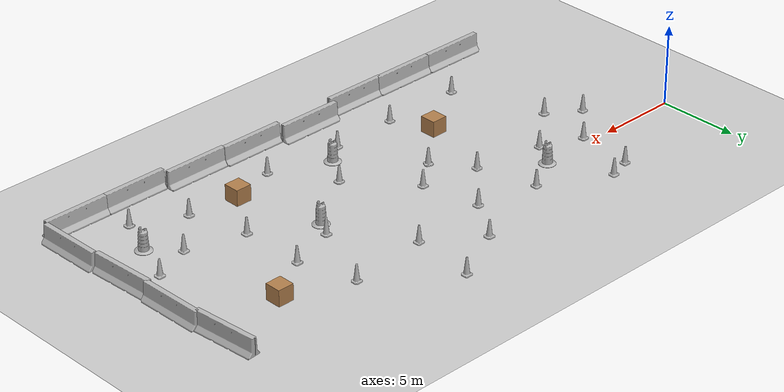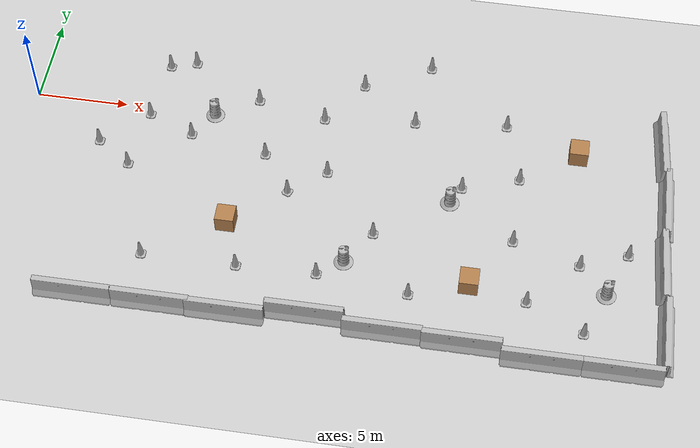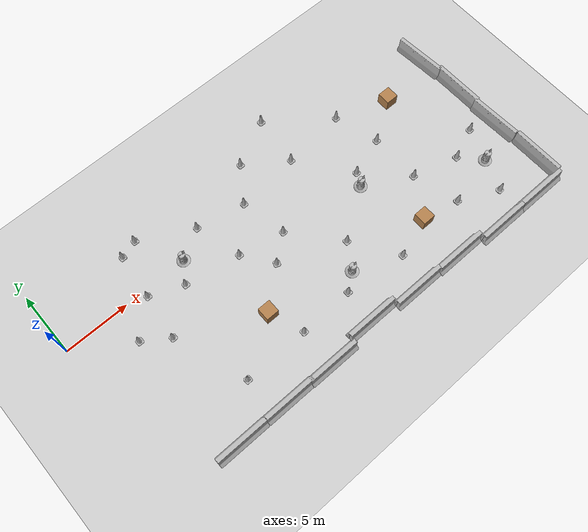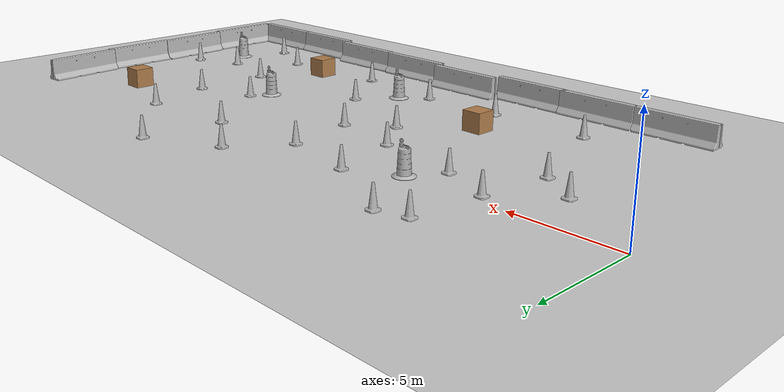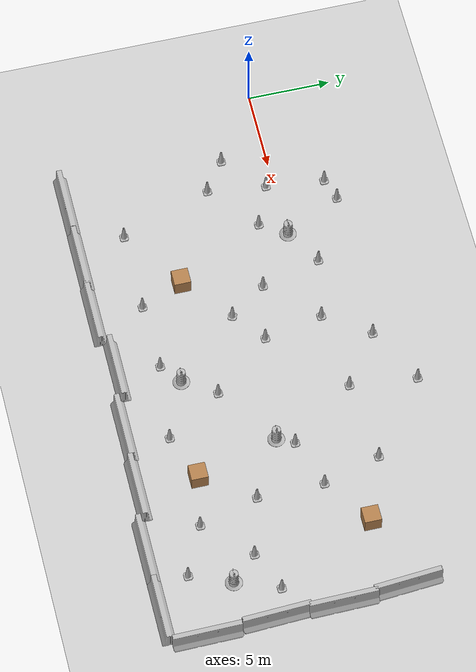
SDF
<sdf version="1.4">
 <world name="default">
  <model name="ground_plane">
   <static>1</static>
   <link name="link">
    <collision name="collision">
     <geometry><plane><normal>0 0 1</normal><size>100 100</size></plane></geometry>
     <surface><friction><ode><mu>100</mu><mu2>50</mu2></ode></friction></surface>
    </collision>
    <visual name="visual">
     <cast_shadows>0</cast_shadows>
     <geometry><plane><normal>0 0 1</normal><size>100 100</size></plane></geometry>
     <material>
      <script><uri>file://media/materials/scripts/gazebo.material</uri><name>Gazebo/Grey</name></script>
     </material>
    </visual>
    <velocity_decay><linear>0</linear><angular>0</angular></velocity_decay>
   </link>
  </model>
  <model name="jersey_barrier_2">
   <static>1</static>
   <link name="link">
    <visual name="visual">
     <geometry><mesh><uri>model://jersey_barrier/meshes/jersey_barrier.dae</uri></mesh></geometry>
    </visual>
    <collision name="upright">
     <pose>0 0 0.5715 0 -0 0</pose>
     <geometry><box><size>4.06542 0.3063 1.143</size></box></geometry>
    </collision>
    <collision name="base">
     <pose>0 0 0.032258 0 -0 0</pose>
     <geometry><box><size>4.06542 0.8107 0.064516</size></box></geometry>
    </collision>
    <collision name="base2">
     <pose>0 0 0.1 0 -0 0</pose>
     <geometry><box><size>4.06542 0.65 0.1</size></box></geometry>
    </collision>
    <collision name="base3">
     <pose>0 0 0.2 0 -0 0</pose>
     <geometry><box><size>4.06542 0.5 0.1</size></box></geometry>
    </collision>
    <collision name="left-angle">
     <pose>0 -0.224 0.2401 0.9 -0 0</pose>
     <geometry><box><size>4.06542 0.5 0.064516</size></box></geometry>
    </collision>
    <collision name="right-angle">
     <pose>0 0.224 0.2401 -0.9 0 0</pose>
     <geometry><box><size>4.06542 0.5 0.064516</size></box></geometry>
    </collision>
    <velocity_decay><linear>0</linear><angular>0</angular></velocity_decay>
   </link>
   <pose>5.13642 -12.451 0 0 -0 0</pose>
  </model>
  <model name="jersey_barrier_3">
   <static>1</static>
   <link name="link">
    <visual name="visual">
     <geometry><mesh><uri>model://jersey_barrier/meshes/jersey_barrier.dae</uri></mesh></geometry>
    </visual>
    <collision name="upright">
     <pose>0 0 0.5715 0 -0 0</pose>
     <geometry><box><size>4.06542 0.3063 1.143</size></box></geometry>
    </collision>
    <collision name="base">
     <pose>0 0 0.032258 0 -0 0</pose>
     <geometry><box><size>4.06542 0.8107 0.064516</size></box></geometry>
    </collision>
    <collision name="base2">
     <pose>0 0 0.1 0 -0 0</pose>
     <geometry><box><size>4.06542 0.65 0.1</size></box></geometry>
    </collision>
    <collision name="base3">
     <pose>0 0 0.2 0 -0 0</pose>
     <geometry><box><size>4.06542 0.5 0.1</size></box></geometry>
    </collision>
    <collision name="left-angle">
     <pose>0 -0.224 0.2401 0.9 -0 0</pose>
     <geometry><box><size>4.06542 0.5 0.064516</size></box></geometry>
    </collision>
    <collision name="right-angle">
     <pose>0 0.224 0.2401 -0.9 0 0</pose>
     <geometry><box><size>4.06542 0.5 0.064516</size></box></geometry>
    </collision>
    <velocity_decay><linear>0</linear><angular>0</angular></velocity_decay>
   </link>
   <pose>9.19104 -12.4604 0 0 -0 0</pose>
  </model>
  <model name="jersey_barrier_4">
   <static>1</static>
   <link name="link">
    <visual name="visual">
     <geometry><mesh><uri>model://jersey_barrier/meshes/jersey_barrier.dae</uri></mesh></geometry>
    </visual>
    <collision name="upright">
     <pose>0 0 0.5715 0 -0 0</pose>
     <geometry><box><size>4.06542 0.3063 1.143</size></box></geometry>
    </collision>
    <collision name="base">
     <pose>0 0 0.032258 0 -0 0</pose>
     <geometry><box><size>4.06542 0.8107 0.064516</size></box></geometry>
    </collision>
    <collision name="base2">
     <pose>0 0 0.1 0 -0 0</pose>
     <geometry><box><size>4.06542 0.65 0.1</size></box></geometry>
    </collision>
    <collision name="base3">
     <pose>0 0 0.2 0 -0 0</pose>
     <geometry><box><size>4.06542 0.5 0.1</size></box></geometry>
    </collision>
    <collision name="left-angle">
     <pose>0 -0.224 0.2401 0.9 -0 0</pose>
     <geometry><box><size>4.06542 0.5 0.064516</size></box></geometry>
    </collision>
    <collision name="right-angle">
     <pose>0 0.224 0.2401 -0.9 0 0</pose>
     <geometry><box><size>4.06542 0.5 0.064516</size></box></geometry>
    </collision>
    <velocity_decay><linear>0</linear><angular>0</angular></velocity_decay>
   </link>
   <pose>35.079 -10.8209 0 0 -0 1.58161</pose>
  </model>
  <model name="jersey_barrier_12">
   <static>1</static>
   <link name="link">
    <visual name="visual">
     <geometry><mesh><uri>model://jersey_barrier/meshes/jersey_barrier.dae</uri></mesh></geometry>
    </visual>
    <collision name="upright">
     <pose>0 0 0.5715 0 -0 0</pose>
     <geometry><box><size>4.06542 0.3063 1.143</size></box></geometry>
    </collision>
    <collision name="base">
     <pose>0 0 0.032258 0 -0 0</pose>
     <geometry><box><size>4.06542 0.8107 0.064516</size></box></geometry>
    </collision>
    <collision name="base2">
     <pose>0 0 0.1 0 -0 0</pose>
     <geometry><box><size>4.06542 0.65 0.1</size></box></geometry>
    </collision>
    <collision name="base3">
     <pose>0 0 0.2 0 -0 0</pose>
     <geometry><box><size>4.06542 0.5 0.1</size></box></geometry>
    </collision>
    <collision name="left-angle">
     <pose>0 -0.224 0.2401 0.9 -0 0</pose>
     <geometry><box><size>4.06542 0.5 0.064516</size></box></geometry>
    </collision>
    <collision name="right-angle">
     <pose>0 0.224 0.2401 -0.9 0 0</pose>
     <geometry><box><size>4.06542 0.5 0.064516</size></box></geometry>
    </collision>
    <velocity_decay><linear>0</linear><angular>0</angular></velocity_decay>
   </link>
   <pose>34.5148 0.998685 0 0 -0 1.64825</pose>
  </model>
  <model name="jersey_barrier_13">
   <static>1</static>
   <link name="link">
    <visual name="visual">
     <geometry><mesh><uri>model://jersey_barrier/meshes/jersey_barrier.dae</uri></mesh></geometry>
    </visual>
    <collision name="upright">
     <pose>0 0 0.5715 0 -0 0</pose>
     <geometry><box><size>4.06542 0.3063 1.143</size></box></geometry>
    </collision>
    <collision name="base">
     <pose>0 0 0.032258 0 -0 0</pose>
     <geometry><box><size>4.06542 0.8107 0.064516</size></box></geometry>
    </collision>
    <collision name="base2">
     <pose>0 0 0.1 0 -0 0</pose>
     <geometry><box><size>4.06542 0.65 0.1</size></box></geometry>
    </collision>
    <collision name="base3">
     <pose>0 0 0.2 0 -0 0</pose>
     <geometry><box><size>4.06542 0.5 0.1</size></box></geometry>
    </collision>
    <collision name="left-angle">
     <pose>0 -0.224 0.2401 0.9 -0 0</pose>
     <geometry><box><size>4.06542 0.5 0.064516</size></box></geometry>
    </collision>
    <collision name="right-angle">
     <pose>0 0.224 0.2401 -0.9 0 0</pose>
     <geometry><box><size>4.06542 0.5 0.064516</size></box></geometry>
    </collision>
    <velocity_decay><linear>0</linear><angular>0</angular></velocity_decay>
   </link>
   <pose>34.8236 -2.82804 0 0 -0 1.58545</pose>
  </model>
  <model name="jersey_barrier_14">
   <static>1</static>
   <link name="link">
    <visual name="visual">
     <geometry><mesh><uri>model://jersey_barrier/meshes/jersey_barrier.dae</uri></mesh></geometry>
    </visual>
    <collision name="upright">
     <pose>0 0 0.5715 0 -0 0</pose>
     <geometry><box><size>4.06542 0.3063 1.143</size></box></geometry>
    </collision>
    <collision name="base">
     <pose>0 0 0.032258 0 -0 0</pose>
     <geometry><box><size>4.06542 0.8107 0.064516</size></box></geometry>
    </collision>
    <collision name="base2">
     <pose>0 0 0.1 0 -0 0</pose>
     <geometry><box><size>4.06542 0.65 0.1</size></box></geometry>
    </collision>
    <collision name="base3">
     <pose>0 0 0.2 0 -0 0</pose>
     <geometry><box><size>4.06542 0.5 0.1</size></box></geometry>
    </collision>
    <collision name="left-angle">
     <pose>0 -0.224 0.2401 0.9 -0 0</pose>
     <geometry><box><size>4.06542 0.5 0.064516</size></box></geometry>
    </collision>
    <collision name="right-angle">
     <pose>0 0.224 0.2401 -0.9 0 0</pose>
     <geometry><box><size>4.06542 0.5 0.064516</size></box></geometry>
    </collision>
    <velocity_decay><linear>0</linear><angular>0</angular></velocity_decay>
   </link>
   <pose>34.8267 -6.73094 0 0 -0 1.61742</pose>
  </model>
  <model name="Construction Cone_0">
   <link name="link">
    <collision name="collision">
     <geometry>
      <mesh><scale>10 10 10</scale><uri>model://construction_cone/meshes/construction_cone.dae</uri></mesh>
     </geometry>
    </collision>
    <visual name="visual">
     <geometry>
      <mesh><scale>10 10 10</scale><uri>model://construction_cone/meshes/construction_cone.dae</uri></mesh>
     </geometry>
    </visual>
    <velocity_decay><linear>0</linear><angular>0</angular></velocity_decay>
    <inertial>
     <inertia><ixx>1</ixx><ixy>0</ixy><ixz>0</ixz><iyy>1</iyy><iyz>0</iyz><izz>1</izz></inertia>
     <mass>1</mass>
    </inertial>
   </link>
   <pose>19.7333 -6.57949 -1e-06 -1e-06 -2e-06 8.07794e-28</pose>
   <static>0</static>
  </model>
  <model name="Construction Cone_3">
   <link name="link">
    <collision name="collision">
     <geometry>
      <mesh><scale>10 10 10</scale><uri>model://construction_cone/meshes/construction_cone.dae</uri></mesh>
     </geometry>
    </collision>
    <visual name="visual">
     <geometry>
      <mesh><scale>10 10 10</scale><uri>model://construction_cone/meshes/construction_cone.dae</uri></mesh>
     </geometry>
    </visual>
    <velocity_decay><linear>0</linear><angular>0</angular></velocity_decay>
    <inertial>
     <inertia><ixx>1</ixx><ixy>0</ixy><ixz>0</ixz><iyy>1</iyy><iyz>0</iyz><izz>1</izz></inertia>
     <mass>1</mass>
    </inertial>
   </link>
   <pose>4.12286 -2.7008 -0 0 -1e-06 0</pose>
   <static>0</static>
  </model>
  <model name="Construction Cone_7">
   <link name="link">
    <collision name="collision">
     <geometry>
      <mesh><scale>10 10 10</scale><uri>model://construction_cone/meshes/construction_cone.dae</uri></mesh>
     </geometry>
    </collision>
    <visual name="visual">
     <geometry>
      <mesh><scale>10 10 10</scale><uri>model://construction_cone/meshes/construction_cone.dae</uri></mesh>
     </geometry>
    </visual>
    <velocity_decay><linear>0</linear><angular>0</angular></velocity_decay>
    <inertial>
     <inertia><ixx>1</ixx><ixy>0</ixy><ixz>0</ixz><iyy>1</iyy><iyz>0</iyz><izz>1</izz></inertia>
     <mass>1</mass>
    </inertial>
   </link>
   <pose>17.1922 -9.4642 -1e-06 -2e-06 -3e-06 0</pose>
   <static>0</static>
  </model>
  <model name="Construction Cone_11">
   <link name="link">
    <collision name="collision">
     <geometry>
      <mesh><scale>10 10 10</scale><uri>model://construction_cone/meshes/construction_cone.dae</uri></mesh>
     </geometry>
    </collision>
    <visual name="visual">
     <geometry>
      <mesh><scale>10 10 10</scale><uri>model://construction_cone/meshes/construction_cone.dae</uri></mesh>
     </geometry>
    </visual>
    <velocity_decay><linear>0</linear><angular>0</angular></velocity_decay>
    <inertial>
     <inertia><ixx>1</ixx><ixy>0</ixy><ixz>0</ixz><iyy>1</iyy><iyz>0</iyz><izz>1</izz></inertia>
     <mass>1</mass>
    </inertial>
   </link>
   <pose>12.2625 1.30731 -0 0 -1e-06 0</pose>
   <static>0</static>
  </model>
  <model name="Construction Cone_14">
   <link name="link">
    <collision name="collision">
     <geometry>
      <mesh><scale>10 10 10</scale><uri>model://construction_cone/meshes/construction_cone.dae</uri></mesh>
     </geometry>
    </collision>
    <visual name="visual">
     <geometry>
      <mesh><scale>10 10 10</scale><uri>model://construction_cone/meshes/construction_cone.dae</uri></mesh>
     </geometry>
    </visual>
    <velocity_decay><linear>0</linear><angular>0</angular></velocity_decay>
    <inertial>
     <inertia><ixx>1</ixx><ixy>0</ixy><ixz>0</ixz><iyy>1</iyy><iyz>0</iyz><izz>1</izz></inertia>
     <mass>1</mass>
    </inertial>
   </link>
   <pose>6.86653 3.00817 0 0 -0 0</pose>
   <static>0</static>
  </model>
  <model name="Construction Cone_19">
   <link name="link">
    <collision name="collision">
     <geometry>
      <mesh><scale>10 10 10</scale><uri>model://construction_cone/meshes/construction_cone.dae</uri></mesh>
     </geometry>
    </collision>
    <visual name="visual">
     <geometry>
      <mesh><scale>10 10 10</scale><uri>model://construction_cone/meshes/construction_cone.dae</uri></mesh>
     </geometry>
    </visual>
    <velocity_decay><linear>0</linear><angular>0</angular></velocity_decay>
    <inertial>
     <inertia><ixx>1</ixx><ixy>0</ixy><ixz>0</ixz><iyy>1</iyy><iyz>0</iyz><izz>1</izz></inertia>
     <mass>1</mass>
    </inertial>
   </link>
   <pose>13.2345 -2.31374 0 0 1e-06 0</pose>
   <static>0</static>
  </model>
  <model name="Construction Cone_21">
   <link name="link">
    <collision name="collision">
     <geometry>
      <mesh><scale>10 10 10</scale><uri>model://construction_cone/meshes/construction_cone.dae</uri></mesh>
     </geometry>
    </collision>
    <visual name="visual">
     <geometry>
      <mesh><scale>10 10 10</scale><uri>model://construction_cone/meshes/construction_cone.dae</uri></mesh>
     </geometry>
    </visual>
    <velocity_decay><linear>0</linear><angular>0</angular></velocity_decay>
    <inertial>
     <inertia><ixx>1</ixx><ixy>0</ixy><ixz>0</ixz><iyy>1</iyy><iyz>0</iyz><izz>1</izz></inertia>
     <mass>1</mass>
    </inertial>
   </link>
   <pose>6.47202 -0.495356 -9e-06 0 1e-06 0</pose>
   <static>0</static>
  </model>
  <model name="Construction Cone_22">
   <link name="link">
    <collision name="collision">
     <geometry>
      <mesh><scale>10 10 10</scale><uri>model://construction_cone/meshes/construction_cone.dae</uri></mesh>
     </geometry>
    </collision>
    <visual name="visual">
     <geometry>
      <mesh><scale>10 10 10</scale><uri>model://construction_cone/meshes/construction_cone.dae</uri></mesh>
     </geometry>
    </visual>
    <velocity_decay><linear>0</linear><angular>0</angular></velocity_decay>
    <inertial>
     <inertia><ixx>1</ixx><ixy>0</ixy><ixz>0</ixz><iyy>1</iyy><iyz>0</iyz><izz>1</izz></inertia>
     <mass>1</mass>
    </inertial>
   </link>
   <pose>6 -4 -9e-06 -1e-06 2e-06 -8.07794e-28</pose>
   <static>0</static>
  </model>
  <model name="jersey_barrier_32">
   <static>1</static>
   <link name="link">
    <visual name="visual">
     <geometry><mesh><uri>model://jersey_barrier/meshes/jersey_barrier.dae</uri></mesh></geometry>
    </visual>
    <collision name="upright">
     <pose>0 0 0.5715 0 -0 0</pose>
     <geometry><box><size>4.06542 0.3063 1.143</size></box></geometry>
    </collision>
    <collision name="base">
     <pose>0 0 0.032258 0 -0 0</pose>
     <geometry><box><size>4.06542 0.8107 0.064516</size></box></geometry>
    </collision>
    <collision name="base2">
     <pose>0 0 0.1 0 -0 0</pose>
     <geometry><box><size>4.06542 0.65 0.1</size></box></geometry>
    </collision>
    <collision name="base3">
     <pose>0 0 0.2 0 -0 0</pose>
     <geometry><box><size>4.06542 0.5 0.1</size></box></geometry>
    </collision>
    <collision name="left-angle">
     <pose>0 -0.224 0.2401 0.9 -0 0</pose>
     <geometry><box><size>4.06542 0.5 0.064516</size></box></geometry>
    </collision>
    <collision name="right-angle">
     <pose>0 0.224 0.2401 -0.9 0 0</pose>
     <geometry><box><size>4.06542 0.5 0.064516</size></box></geometry>
    </collision>
    <velocity_decay><linear>0</linear><angular>0</angular></velocity_decay>
   </link>
   <pose>13 -12.505 0 0 -0 0</pose>
  </model>
  <model name="jersey_barrier_33">
   <static>1</static>
   <link name="link">
    <visual name="visual">
     <geometry><mesh><uri>model://jersey_barrier/meshes/jersey_barrier.dae</uri></mesh></geometry>
    </visual>
    <collision name="upright">
     <pose>0 0 0.5715 0 -0 0</pose>
     <geometry><box><size>4.06542 0.3063 1.143</size></box></geometry>
    </collision>
    <collision name="base">
     <pose>0 0 0.032258 0 -0 0</pose>
     <geometry><box><size>4.06542 0.8107 0.064516</size></box></geometry>
    </collision>
    <collision name="base2">
     <pose>0 0 0.1 0 -0 0</pose>
     <geometry><box><size>4.06542 0.65 0.1</size></box></geometry>
    </collision>
    <collision name="base3">
     <pose>0 0 0.2 0 -0 0</pose>
     <geometry><box><size>4.06542 0.5 0.1</size></box></geometry>
    </collision>
    <collision name="left-angle">
     <pose>0 -0.224 0.2401 0.9 -0 0</pose>
     <geometry><box><size>4.06542 0.5 0.064516</size></box></geometry>
    </collision>
    <collision name="right-angle">
     <pose>0 0.224 0.2401 -0.9 0 0</pose>
     <geometry><box><size>4.06542 0.5 0.064516</size></box></geometry>
    </collision>
    <velocity_decay><linear>0</linear><angular>0</angular></velocity_decay>
   </link>
   <pose>17 -12 0 0 -0 0</pose>
  </model>
  <model name="jersey_barrier_34">
   <static>1</static>
   <link name="link">
    <visual name="visual">
     <geometry><mesh><uri>model://jersey_barrier/meshes/jersey_barrier.dae</uri></mesh></geometry>
    </visual>
    <collision name="upright">
     <pose>0 0 0.5715 0 -0 0</pose>
     <geometry><box><size>4.06542 0.3063 1.143</size></box></geometry>
    </collision>
    <collision name="base">
     <pose>0 0 0.032258 0 -0 0</pose>
     <geometry><box><size>4.06542 0.8107 0.064516</size></box></geometry>
    </collision>
    <collision name="base2">
     <pose>0 0 0.1 0 -0 0</pose>
     <geometry><box><size>4.06542 0.65 0.1</size></box></geometry>
    </collision>
    <collision name="base3">
     <pose>0 0 0.2 0 -0 0</pose>
     <geometry><box><size>4.06542 0.5 0.1</size></box></geometry>
    </collision>
    <collision name="left-angle">
     <pose>0 -0.224 0.2401 0.9 -0 0</pose>
     <geometry><box><size>4.06542 0.5 0.064516</size></box></geometry>
    </collision>
    <collision name="right-angle">
     <pose>0 0.224 0.2401 -0.9 0 0</pose>
     <geometry><box><size>4.06542 0.5 0.064516</size></box></geometry>
    </collision>
    <velocity_decay><linear>0</linear><angular>0</angular></velocity_decay>
   </link>
   <pose>21 -12.4598 0 0 -0 0</pose>
  </model>
  <model name="jersey_barrier_35">
   <static>1</static>
   <link name="link">
    <visual name="visual">
     <geometry><mesh><uri>model://jersey_barrier/meshes/jersey_barrier.dae</uri></mesh></geometry>
    </visual>
    <collision name="upright">
     <pose>0 0 0.5715 0 -0 0</pose>
     <geometry><box><size>4.06542 0.3063 1.143</size></box></geometry>
    </collision>
    <collision name="base">
     <pose>0 0 0.032258 0 -0 0</pose>
     <geometry><box><size>4.06542 0.8107 0.064516</size></box></geometry>
    </collision>
    <collision name="base2">
     <pose>0 0 0.1 0 -0 0</pose>
     <geometry><box><size>4.06542 0.65 0.1</size></box></geometry>
    </collision>
    <collision name="base3">
     <pose>0 0 0.2 0 -0 0</pose>
     <geometry><box><size>4.06542 0.5 0.1</size></box></geometry>
    </collision>
    <collision name="left-angle">
     <pose>0 -0.224 0.2401 0.9 -0 0</pose>
     <geometry><box><size>4.06542 0.5 0.064516</size></box></geometry>
    </collision>
    <collision name="right-angle">
     <pose>0 0.224 0.2401 -0.9 0 0</pose>
     <geometry><box><size>4.06542 0.5 0.064516</size></box></geometry>
    </collision>
    <velocity_decay><linear>0</linear><angular>0</angular></velocity_decay>
   </link>
   <pose>25 -12.5589 0 0 -0 0</pose>
  </model>
  <model name="jersey_barrier_36">
   <static>1</static>
   <link name="link">
    <visual name="visual">
     <geometry><mesh><uri>model://jersey_barrier/meshes/jersey_barrier.dae</uri></mesh></geometry>
    </visual>
    <collision name="upright">
     <pose>0 0 0.5715 0 -0 0</pose>
     <geometry><box><size>4.06542 0.3063 1.143</size></box></geometry>
    </collision>
    <collision name="base">
     <pose>0 0 0.032258 0 -0 0</pose>
     <geometry><box><size>4.06542 0.8107 0.064516</size></box></geometry>
    </collision>
    <collision name="base2">
     <pose>0 0 0.1 0 -0 0</pose>
     <geometry><box><size>4.06542 0.65 0.1</size></box></geometry>
    </collision>
    <collision name="base3">
     <pose>0 0 0.2 0 -0 0</pose>
     <geometry><box><size>4.06542 0.5 0.1</size></box></geometry>
    </collision>
    <collision name="left-angle">
     <pose>0 -0.224 0.2401 0.9 -0 0</pose>
     <geometry><box><size>4.06542 0.5 0.064516</size></box></geometry>
    </collision>
    <collision name="right-angle">
     <pose>0 0.224 0.2401 -0.9 0 0</pose>
     <geometry><box><size>4.06542 0.5 0.064516</size></box></geometry>
    </collision>
    <velocity_decay><linear>0</linear><angular>0</angular></velocity_decay>
   </link>
   <pose>29 -13 0 0 -0 0</pose>
  </model>
  <model name="jersey_barrier_37">
   <static>1</static>
   <link name="link">
    <visual name="visual">
     <geometry><mesh><uri>model://jersey_barrier/meshes/jersey_barrier.dae</uri></mesh></geometry>
    </visual>
    <collision name="upright">
     <pose>0 0 0.5715 0 -0 0</pose>
     <geometry><box><size>4.06542 0.3063 1.143</size></box></geometry>
    </collision>
    <collision name="base">
     <pose>0 0 0.032258 0 -0 0</pose>
     <geometry><box><size>4.06542 0.8107 0.064516</size></box></geometry>
    </collision>
    <collision name="base2">
     <pose>0 0 0.1 0 -0 0</pose>
     <geometry><box><size>4.06542 0.65 0.1</size></box></geometry>
    </collision>
    <collision name="base3">
     <pose>0 0 0.2 0 -0 0</pose>
     <geometry><box><size>4.06542 0.5 0.1</size></box></geometry>
    </collision>
    <collision name="left-angle">
     <pose>0 -0.224 0.2401 0.9 -0 0</pose>
     <geometry><box><size>4.06542 0.5 0.064516</size></box></geometry>
    </collision>
    <collision name="right-angle">
     <pose>0 0.224 0.2401 -0.9 0 0</pose>
     <geometry><box><size>4.06542 0.5 0.064516</size></box></geometry>
    </collision>
    <velocity_decay><linear>0</linear><angular>0</angular></velocity_decay>
   </link>
   <pose>33 -13 0 0 -0 0</pose>
  </model>
  <model name="unit_box_2_0">
   <pose>12 -7 0.5 0 -0 0</pose>
   <link name="link">
    <inertial>
     <mass>1</mass>
     <inertia><ixx>1</ixx><ixy>0</ixy><ixz>0</ixz><iyy>1</iyy><iyz>0</iyz><izz>1</izz></inertia>
    </inertial>
    <collision name="collision"><geometry><box><size>1 1 1</size></box></geometry></collision>
    <visual name="visual">
     <geometry><box><size>1 1 1</size></box></geometry>
     <material>
      <script><uri>file://media/materials/scripts/gazebo.material</uri><name>Gazebo/Wood</name></script>
     </material>
    </visual>
    <velocity_decay><linear>0</linear><angular>0</angular></velocity_decay>
   </link>
   <static>0</static>
  </model>
  <model name="unit_box_4">
   <pose>25 -9 0.5 0 -0 0</pose>
   <link name="link">
    <inertial>
     <mass>1</mass>
     <inertia><ixx>1</ixx><ixy>0</ixy><ixz>0</ixz><iyy>1</iyy><iyz>0</iyz><izz>1</izz></inertia>
    </inertial>
    <collision name="collision"><geometry><box><size>1 1 1</size></box></geometry></collision>
    <visual name="visual">
     <geometry><box><size>1 1 1</size></box></geometry>
     <material>
      <script><uri>file://media/materials/scripts/gazebo.material</uri><name>Gazebo/Wood</name></script>
     </material>
    </visual>
    <velocity_decay><linear>0</linear><angular>0</angular></velocity_decay>
   </link>
   <static>0</static>
  </model>
  <model name="unit_box_5">
   <pose>30 0 0.5 0 -0 0</pose>
   <link name="link">
    <inertial>
     <mass>1</mass>
     <inertia><ixx>1</ixx><ixy>0</ixy><ixz>0</ixz><iyy>1</iyy><iyz>0</iyz><izz>1</izz></inertia>
    </inertial>
    <collision name="collision"><geometry><box><size>1 1 1</size></box></geometry></collision>
    <visual name="visual">
     <geometry><box><size>1 1 1</size></box></geometry>
     <material>
      <script><uri>file://media/materials/scripts/gazebo.material</uri><name>Gazebo/Wood</name></script>
     </material>
    </visual>
    <velocity_decay><linear>0</linear><angular>0</angular></velocity_decay>
   </link>
   <static>0</static>
  </model>
  <model name="Construction Cone_26">
   <link name="link">
    <collision name="collision">
     <geometry>
      <mesh><scale>10 10 10</scale><uri>model://construction_cone/meshes/construction_cone.dae</uri></mesh>
     </geometry>
    </collision>
    <visual name="visual">
     <geometry>
      <mesh><scale>10 10 10</scale><uri>model://construction_cone/meshes/construction_cone.dae</uri></mesh>
     </geometry>
    </visual>
    <velocity_decay><linear>0</linear><angular>0</angular></velocity_decay>
    <inertial>
     <inertia><ixx>1</ixx><ixy>0</ixy><ixz>0</ixz><iyy>1</iyy><iyz>0</iyz><izz>1</izz></inertia>
     <mass>1</mass>
    </inertial>
   </link>
   <pose>9 -1.54784 -0 0 -1e-06 0</pose>
   <static>0</static>
  </model>
  <model name="Construction Cone_27">
   <link name="link">
    <collision name="collision">
     <geometry>
      <mesh><scale>10 10 10</scale><uri>model://construction_cone/meshes/construction_cone.dae</uri></mesh>
     </geometry>
    </collision>
    <visual name="visual">
     <geometry>
      <mesh><scale>10 10 10</scale><uri>model://construction_cone/meshes/construction_cone.dae</uri></mesh>
     </geometry>
    </visual>
    <velocity_decay><linear>0</linear><angular>0</angular></velocity_decay>
    <inertial>
     <inertia><ixx>1</ixx><ixy>0</ixy><ixz>0</ixz><iyy>1</iyy><iyz>0</iyz><izz>1</izz></inertia>
     <mass>1</mass>
    </inertial>
   </link>
   <pose>8 -9.56634 -1e-06 0 -1e-06 0</pose>
   <static>0</static>
  </model>
  <model name="Construction Cone_28">
   <link name="link">
    <collision name="collision">
     <geometry>
      <mesh><scale>10 10 10</scale><uri>model://construction_cone/meshes/construction_cone.dae</uri></mesh>
     </geometry>
    </collision>
    <visual name="visual">
     <geometry>
      <mesh><scale>10 10 10</scale><uri>model://construction_cone/meshes/construction_cone.dae</uri></mesh>
     </geometry>
    </visual>
    <velocity_decay><linear>0</linear><angular>0</angular></velocity_decay>
    <inertial>
     <inertia><ixx>1</ixx><ixy>0</ixy><ixz>0</ixz><iyy>1</iyy><iyz>0</iyz><izz>1</izz></inertia>
     <mass>1</mass>
    </inertial>
   </link>
   <pose>24 -3 -0 0 -1e-06 0</pose>
   <static>0</static>
  </model>
  <model name="Construction Cone_30">
   <link name="link">
    <collision name="collision">
     <geometry>
      <mesh><scale>10 10 10</scale><uri>model://construction_cone/meshes/construction_cone.dae</uri></mesh>
     </geometry>
    </collision>
    <visual name="visual">
     <geometry>
      <mesh><scale>10 10 10</scale><uri>model://construction_cone/meshes/construction_cone.dae</uri></mesh>
     </geometry>
    </visual>
    <velocity_decay><linear>0</linear><angular>0</angular></velocity_decay>
    <inertial>
     <inertia><ixx>1</ixx><ixy>0</ixy><ixz>0</ixz><iyy>1</iyy><iyz>0</iyz><izz>1</izz></inertia>
     <mass>1</mass>
    </inertial>
   </link>
   <pose>17.898 3.19329 0 0 -0 0</pose>
   <static>0</static>
  </model>
  <model name="Construction Cone_32">
   <link name="link">
    <collision name="collision">
     <geometry>
      <mesh><scale>10 10 10</scale><uri>model://construction_cone/meshes/construction_cone.dae</uri></mesh>
     </geometry>
    </collision>
    <visual name="visual">
     <geometry>
      <mesh><scale>10 10 10</scale><uri>model://construction_cone/meshes/construction_cone.dae</uri></mesh>
     </geometry>
    </visual>
    <velocity_decay><linear>0</linear><angular>0</angular></velocity_decay>
    <inertial>
     <inertia><ixx>1</ixx><ixy>0</ixy><ixz>0</ixz><iyy>1</iyy><iyz>0</iyz><izz>1</izz></inertia>
     <mass>1</mass>
    </inertial>
   </link>
   <pose>14.8322 -4.55425 -8e-06 -1e-06 -0 -0.361328</pose>
   <static>0</static>
  </model>
  <model name="Construction Cone_33">
   <link name="link">
    <collision name="collision">
     <geometry>
      <mesh><scale>10 10 10</scale><uri>model://construction_cone/meshes/construction_cone.dae</uri></mesh>
     </geometry>
    </collision>
    <visual name="visual">
     <geometry>
      <mesh><scale>10 10 10</scale><uri>model://construction_cone/meshes/construction_cone.dae</uri></mesh>
     </geometry>
    </visual>
    <velocity_decay><linear>0</linear><angular>0</angular></velocity_decay>
    <inertial>
     <inertia><ixx>1</ixx><ixy>0</ixy><ixz>0</ixz><iyy>1</iyy><iyz>0</iyz><izz>1</izz></inertia>
     <mass>1</mass>
    </inertial>
   </link>
   <pose>27 -6 -1e-06 -1e-06 -2e-06 8.07794e-28</pose>
   <static>0</static>
  </model>
  <model name="Construction Cone_34">
   <link name="link">
    <collision name="collision">
     <geometry>
      <mesh><scale>10 10 10</scale><uri>model://construction_cone/meshes/construction_cone.dae</uri></mesh>
     </geometry>
    </collision>
    <visual name="visual">
     <geometry>
      <mesh><scale>10 10 10</scale><uri>model://construction_cone/meshes/construction_cone.dae</uri></mesh>
     </geometry>
    </visual>
    <velocity_decay><linear>0</linear><angular>0</angular></velocity_decay>
    <inertial>
     <inertia><ixx>1</ixx><ixy>0</ixy><ixz>0</ixz><iyy>1</iyy><iyz>0</iyz><izz>1</izz></inertia>
     <mass>1</mass>
    </inertial>
   </link>
   <pose>21 1 -3e-06 0 1e-06 0</pose>
   <static>0</static>
  </model>
  <model name="Construction Cone_41">
   <link name="link">
    <collision name="collision">
     <geometry>
      <mesh><scale>10 10 10</scale><uri>model://construction_cone/meshes/construction_cone.dae</uri></mesh>
     </geometry>
    </collision>
    <visual name="visual">
     <geometry>
      <mesh><scale>10 10 10</scale><uri>model://construction_cone/meshes/construction_cone.dae</uri></mesh>
     </geometry>
    </visual>
    <velocity_decay><linear>0</linear><angular>0</angular></velocity_decay>
    <inertial>
     <inertia><ixx>1</ixx><ixy>0</ixy><ixz>0</ixz><iyy>1</iyy><iyz>0</iyz><izz>1</izz></inertia>
     <mass>1</mass>
    </inertial>
   </link>
   <pose>16.751 -3.02468 0 0 -0 0</pose>
   <static>0</static>
  </model>
  <model name="Construction Cone_43">
   <link name="link">
    <collision name="collision">
     <geometry>
      <mesh><scale>10 10 10</scale><uri>model://construction_cone/meshes/construction_cone.dae</uri></mesh>
     </geometry>
    </collision>
    <visual name="visual">
     <geometry>
      <mesh><scale>10 10 10</scale><uri>model://construction_cone/meshes/construction_cone.dae</uri></mesh>
     </geometry>
    </visual>
    <velocity_decay><linear>0</linear><angular>0</angular></velocity_decay>
    <inertial>
     <inertia><ixx>1</ixx><ixy>0</ixy><ixz>0</ixz><iyy>1</iyy><iyz>0</iyz><izz>1</izz></inertia>
     <mass>1</mass>
    </inertial>
   </link>
   <pose>33 -6 -7e-06 0 -1e-06 0</pose>
   <static>0</static>
  </model>
  <model name="Construction Cone_44">
   <link name="link">
    <collision name="collision">
     <geometry>
      <mesh><scale>10 10 10</scale><uri>model://construction_cone/meshes/construction_cone.dae</uri></mesh>
     </geometry>
    </collision>
    <visual name="visual">
     <geometry>
      <mesh><scale>10 10 10</scale><uri>model://construction_cone/meshes/construction_cone.dae</uri></mesh>
     </geometry>
    </visual>
    <velocity_decay><linear>0</linear><angular>0</angular></velocity_decay>
    <inertial>
     <inertia><ixx>1</ixx><ixy>0</ixy><ixz>0</ixz><iyy>1</iyy><iyz>0</iyz><izz>1</izz></inertia>
     <mass>1</mass>
    </inertial>
   </link>
   <pose>31 -11 -9e-06 1e-06 -0 0</pose>
   <static>0</static>
  </model>
  <model name="Construction Cone_45">
   <link name="link">
    <collision name="collision">
     <geometry>
      <mesh><scale>10 10 10</scale><uri>model://construction_cone/meshes/construction_cone.dae</uri></mesh>
     </geometry>
    </collision>
    <visual name="visual">
     <geometry>
      <mesh><scale>10 10 10</scale><uri>model://construction_cone/meshes/construction_cone.dae</uri></mesh>
     </geometry>
    </visual>
    <velocity_decay><linear>0</linear><angular>0</angular></velocity_decay>
    <inertial>
     <inertia><ixx>1</ixx><ixy>0</ixy><ixz>0</ixz><iyy>1</iyy><iyz>0</iyz><izz>1</izz></inertia>
     <mass>1</mass>
    </inertial>
   </link>
   <pose>28 -9.58707 0 0 -0 0</pose>
   <static>0</static>
  </model>
  <model name="Construction Cone_46">
   <link name="link">
    <collision name="collision">
     <geometry>
      <mesh><scale>10 10 10</scale><uri>model://construction_cone/meshes/construction_cone.dae</uri></mesh>
     </geometry>
    </collision>
    <visual name="visual">
     <geometry>
      <mesh><scale>10 10 10</scale><uri>model://construction_cone/meshes/construction_cone.dae</uri></mesh>
     </geometry>
    </visual>
    <velocity_decay><linear>0</linear><angular>0</angular></velocity_decay>
    <inertial>
     <inertia><ixx>1</ixx><ixy>0</ixy><ixz>0</ixz><iyy>1</iyy><iyz>0</iyz><izz>1</izz></inertia>
     <mass>1</mass>
    </inertial>
   </link>
   <pose>26 1.48879 0 1e-06 1e-06 0</pose>
   <static>0</static>
  </model>
  <model name="Construction Cone_47">
   <link name="link">
    <collision name="collision">
     <geometry>
      <mesh><scale>10 10 10</scale><uri>model://construction_cone/meshes/construction_cone.dae</uri></mesh>
     </geometry>
    </collision>
    <visual name="visual">
     <geometry>
      <mesh><scale>10 10 10</scale><uri>model://construction_cone/meshes/construction_cone.dae</uri></mesh>
     </geometry>
    </visual>
    <velocity_decay><linear>0</linear><angular>0</angular></velocity_decay>
    <inertial>
     <inertia><ixx>1</ixx><ixy>0</ixy><ixz>0</ixz><iyy>1</iyy><iyz>0</iyz><izz>1</izz></inertia>
     <mass>1</mass>
    </inertial>
   </link>
   <pose>21.4416 5 -1e-06 -1e-06 -2e-06 8.07794e-28</pose>
   <static>0</static>
  </model>
  <model name="Construction Cone_49">
   <link name="link">
    <collision name="collision">
     <geometry>
      <mesh><scale>10 10 10</scale><uri>model://construction_cone/meshes/construction_cone.dae</uri></mesh>
     </geometry>
    </collision>
    <visual name="visual">
     <geometry>
      <mesh><scale>10 10 10</scale><uri>model://construction_cone/meshes/construction_cone.dae</uri></mesh>
     </geometry>
    </visual>
    <velocity_decay><linear>0</linear><angular>0</angular></velocity_decay>
    <inertial>
     <inertia><ixx>1</ixx><ixy>0</ixy><ixz>0</ixz><iyy>1</iyy><iyz>0</iyz><izz>1</izz></inertia>
     <mass>1</mass>
    </inertial>
   </link>
   <pose>16.0406 0.544298 0 1e-06 1e-06 0</pose>
   <static>0</static>
  </model>
  <model name="Construction Cone_53">
   <link name="link">
    <collision name="collision">
     <geometry>
      <mesh><scale>10 10 10</scale><uri>model://construction_cone/meshes/construction_cone.dae</uri></mesh>
     </geometry>
    </collision>
    <visual name="visual">
     <geometry>
      <mesh><scale>10 10 10</scale><uri>model://construction_cone/meshes/construction_cone.dae</uri></mesh>
     </geometry>
    </visual>
    <velocity_decay><linear>0</linear><angular>0</angular></velocity_decay>
    <inertial>
     <inertia><ixx>1</ixx><ixy>0</ixy><ixz>0</ixz><iyy>1</iyy><iyz>0</iyz><izz>1</izz></inertia>
     <mass>1</mass>
    </inertial>
   </link>
   <pose>27 -2 -0 0 -1e-06 0</pose>
   <static>0</static>
  </model>
  <model name="Construction Cone_54">
   <link name="link">
    <collision name="collision">
     <geometry>
      <mesh><scale>10 10 10</scale><uri>model://construction_cone/meshes/construction_cone.dae</uri></mesh>
     </geometry>
    </collision>
    <visual name="visual">
     <geometry>
      <mesh><scale>10 10 10</scale><uri>model://construction_cone/meshes/construction_cone.dae</uri></mesh>
     </geometry>
    </visual>
    <velocity_decay><linear>0</linear><angular>0</angular></velocity_decay>
    <inertial>
     <inertia><ixx>1</ixx><ixy>0</ixy><ixz>0</ixz><iyy>1</iyy><iyz>0</iyz><izz>1</izz></inertia>
     <mass>1</mass>
    </inertial>
   </link>
   <pose>30.5403 -7 -9e-06 -1e-06 -0 -0</pose>
   <static>0</static>
  </model>
  <model name="Construction Cone_58">
   <link name="link">
    <collision name="collision">
     <geometry>
      <mesh><scale>10 10 10</scale><uri>model://construction_cone/meshes/construction_cone.dae</uri></mesh>
     </geometry>
    </collision>
    <visual name="visual">
     <geometry>
      <mesh><scale>10 10 10</scale><uri>model://construction_cone/meshes/construction_cone.dae</uri></mesh>
     </geometry>
    </visual>
    <velocity_decay><linear>0</linear><angular>0</angular></velocity_decay>
    <inertial>
     <inertia><ixx>1</ixx><ixy>0</ixy><ixz>0</ixz><iyy>1</iyy><iyz>0</iyz><izz>1</izz></inertia>
     <mass>1</mass>
    </inertial>
   </link>
   <pose>13 -9.57225 -9e-06 0 1e-06 0</pose>
   <static>0</static>
  </model>
  <model name="Construction Cone_59">
   <link name="link">
    <collision name="collision">
     <geometry>
      <mesh><scale>10 10 10</scale><uri>model://construction_cone/meshes/construction_cone.dae</uri></mesh>
     </geometry>
    </collision>
    <visual name="visual">
     <geometry>
      <mesh><scale>10 10 10</scale><uri>model://construction_cone/meshes/construction_cone.dae</uri></mesh>
     </geometry>
    </visual>
    <velocity_decay><linear>0</linear><angular>0</angular></velocity_decay>
    <inertial>
     <inertia><ixx>1</ixx><ixy>0</ixy><ixz>0</ixz><iyy>1</iyy><iyz>0</iyz><izz>1</izz></inertia>
     <mass>1</mass>
    </inertial>
   </link>
   <pose>22 -10 -9e-06 1e-06 -0 0</pose>
   <static>0</static>
  </model>
  <model name="Construction Barrel">
   <link name="link">
    <inertial>
     <pose>0 0 0.4 0 -0 0</pose>
     <mass>500</mass>
     <inertia><ixx>51.2096</ixx><iyy>51.2096</iyy><izz>25</izz><ixy>0</ixy><ixz>0</ixz><iyz>0</iyz></inertia>
    </inertial>
    <collision name="collision">
     <geometry><mesh><uri>model://construction_barrel/meshes/construction_barrel.dae</uri></mesh></geometry>
    </collision>
    <visual name="visual">
     <geometry><mesh><uri>model://construction_barrel/meshes/construction_barrel.dae</uri></mesh></geometry>
    </visual>
    <velocity_decay><linear>0</linear><angular>0</angular></velocity_decay>
   </link>
   <pose>31.9999 -8.56046 -0 0 -0 -0.003046</pose>
   <static>0</static>
  </model>
  <model name="Construction Barrel_0">
   <link name="link">
    <inertial>
     <pose>0 0 0.4 0 -0 0</pose>
     <mass>500</mass>
     <inertia><ixx>51.2096</ixx><iyy>51.2096</iyy><izz>25</izz><ixy>0</ixy><ixz>0</ixz><iyz>0</iyz></inertia>
    </inertial>
    <collision name="collision">
     <geometry><mesh><uri>model://construction_barrel/meshes/construction_barrel.dae</uri></mesh></geometry>
    </collision>
    <visual name="visual">
     <geometry><mesh><uri>model://construction_barrel/meshes/construction_barrel.dae</uri></mesh></geometry>
    </visual>
    <velocity_decay><linear>0</linear><angular>0</angular></velocity_decay>
   </link>
   <pose>9.99983 0.001638 1e-06 -2e-06 -3e-06 -0.002847</pose>
   <static>0</static>
  </model>
  <model name="Construction Barrel_3">
   <link name="link">
    <inertial>
     <pose>0 0 0.4 0 -0 0</pose>
     <mass>500</mass>
     <inertia><ixx>51.2096</ixx><iyy>51.2096</iyy><izz>25</izz><ixy>0</ixy><ixz>0</ixz><iyz>0</iyz></inertia>
    </inertial>
    <collision name="collision">
     <geometry><mesh><uri>model://construction_barrel/meshes/construction_barrel.dae</uri></mesh></geometry>
    </collision>
    <visual name="visual">
     <geometry><mesh><uri>model://construction_barrel/meshes/construction_barrel.dae</uri></mesh></geometry>
    </visual>
    <velocity_decay><linear>0</linear><angular>0</angular></velocity_decay>
   </link>
   <pose>23.4732 -3.99837 0 0 0 -0.002838</pose>
   <static>0</static>
  </model>
  <model name="Construction Cone_63">
   <link name="link">
    <collision name="collision">
     <geometry>
      <mesh><scale>10 10 10</scale><uri>model://construction_cone/meshes/construction_cone.dae</uri></mesh>
     </geometry>
    </collision>
    <visual name="visual">
     <geometry>
      <mesh><scale>10 10 10</scale><uri>model://construction_cone/meshes/construction_cone.dae</uri></mesh>
     </geometry>
    </visual>
    <velocity_decay><linear>0</linear><angular>0</angular></velocity_decay>
    <inertial>
     <inertia><ixx>1</ixx><ixy>0</ixy><ixz>0</ixz><iyy>1</iyy><iyz>0</iyz><izz>1</izz></inertia>
     <mass>1</mass>
    </inertial>
   </link>
   <pose>8.26457 3.44029 -1e-06 2e-06 -1e-06 -8.07794e-28</pose>
   <static>0</static>
  </model>
  <model name="Construction Barrel_10">
   <link name="link">
    <inertial>
     <pose>0 0 0.4 0 -0 0</pose>
     <mass>500</mass>
     <inertia><ixx>51.2096</ixx><iyy>51.2096</iyy><izz>25</izz><ixy>0</ixy><ixz>0</ixz><iyz>0</iyz></inertia>
    </inertial>
    <collision name="collision">
     <geometry><mesh><uri>model://construction_barrel/meshes/construction_barrel.dae</uri></mesh></geometry>
    </collision>
    <visual name="visual">
     <geometry><mesh><uri>model://construction_barrel/meshes/construction_barrel.dae</uri></mesh></geometry>
    </visual>
    <velocity_decay><linear>0</linear><angular>0</angular></velocity_decay>
   </link>
   <pose>18.4612 -8.49298 0 -1e-06 -1e-06 -0.002665</pose>
   <static>0</static>
  </model>
 </world>
</sdf>
